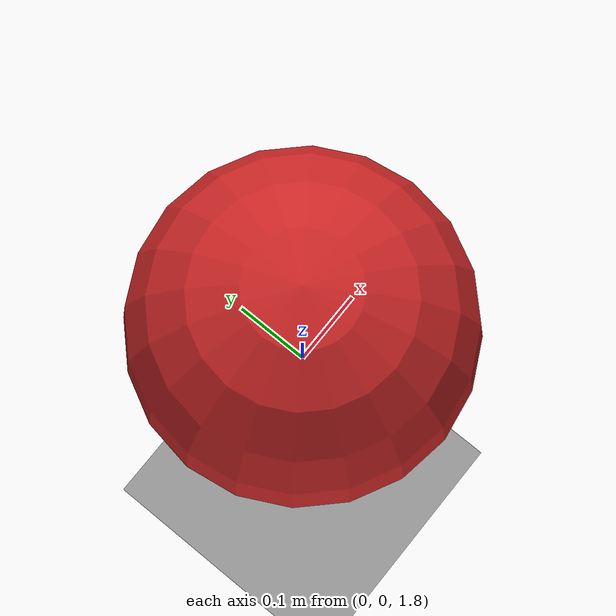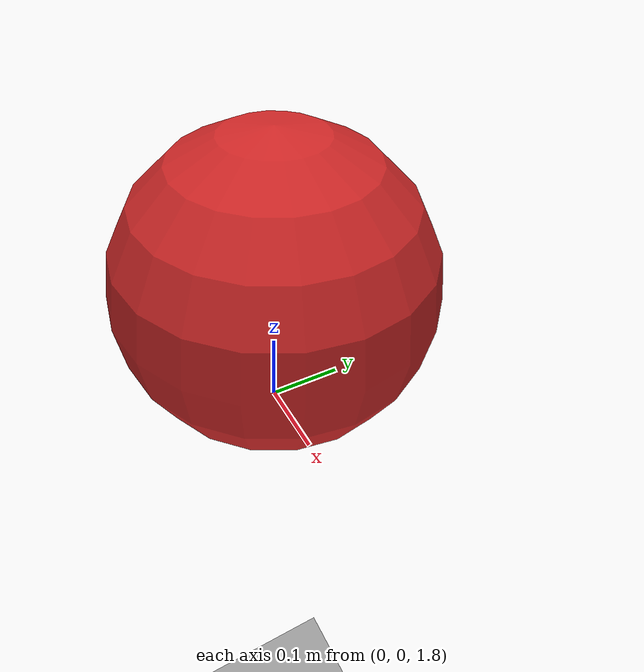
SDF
<?xml version="1.0" ?>
<sdf version="1.6">
  <world name="road_collision_test_world">
    <light name="sun_light" type="directional">
      <cast_shadows>true</cast_shadows>
      <pose>0 0 20 0 0 0</pose>
      <diffuse>0.9 0.9 0.9 1</diffuse>
      <specular>0.2 0.2 0.2 1</specular>
      <attenuation>
        <range>300</range>
        <constant>0.9</constant>
        <linear>0.01</linear>
        <quadratic>0.001</quadratic>
      </attenuation>
      <direction>-0.3 0.1 -0.95</direction>
    </light>
    <gravity>0 0 -9.8</gravity>

    <model name="test_road">
      <static>true</static>
      <link name="link">
        <collision name="collision">
          <pose>0 0 0.05 0 0 0</pose>
          <geometry><box><size>20 8 0.1</size></box></geometry>
        </collision>
        <visual name="visual">
          <pose>0 0 0.05 0 0 0</pose>
          <geometry><box><size>20 8 0.1</size></box></geometry>
          <material><script><uri>file://media/materials/scripts/gazebo.material</uri><name>Gazebo/Grey</name></script></material>
        </visual>
      </link>
    </model>

    <model name="drop_sphere">
      <static>false</static>
      <pose>0 0 2 0 0 0</pose>
      <link name="link">
        <inertial>
          <mass>1.0</mass>
          <inertia>
            <ixx>0.01</ixx><ixy>0</ixy><ixz>0</ixz>
            <iyy>0.01</iyy><iyz>0</iyz><izz>0.01</izz>
          </inertia>
        </inertial>
        <collision name="collision">
          <geometry><sphere><radius>0.2</radius></sphere></geometry>
        </collision>
        <visual name="visual">
          <geometry><sphere><radius>0.2</radius></sphere></geometry>
          <material><script><uri>file://media/materials/scripts/gazebo.material</uri><name>Gazebo/Red</name></script></material>
        </visual>
      </link>
    </model>
  </world>
</sdf>
